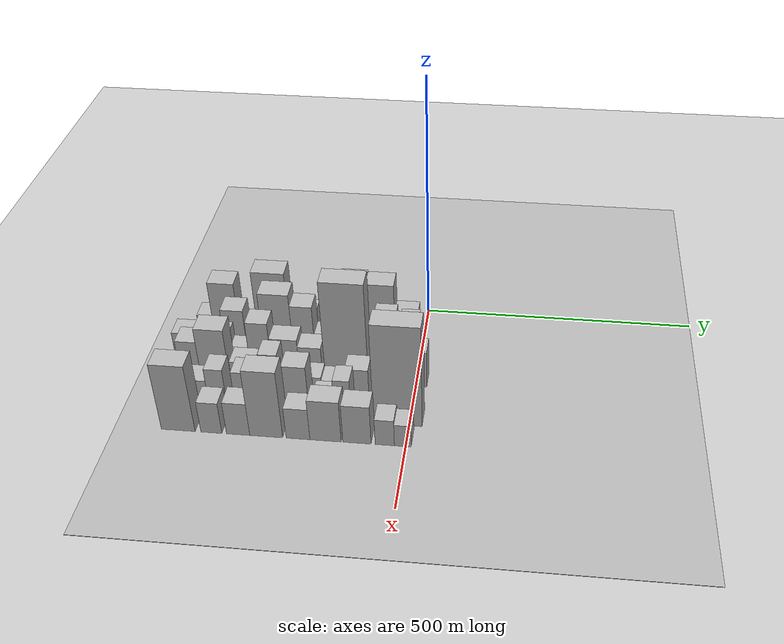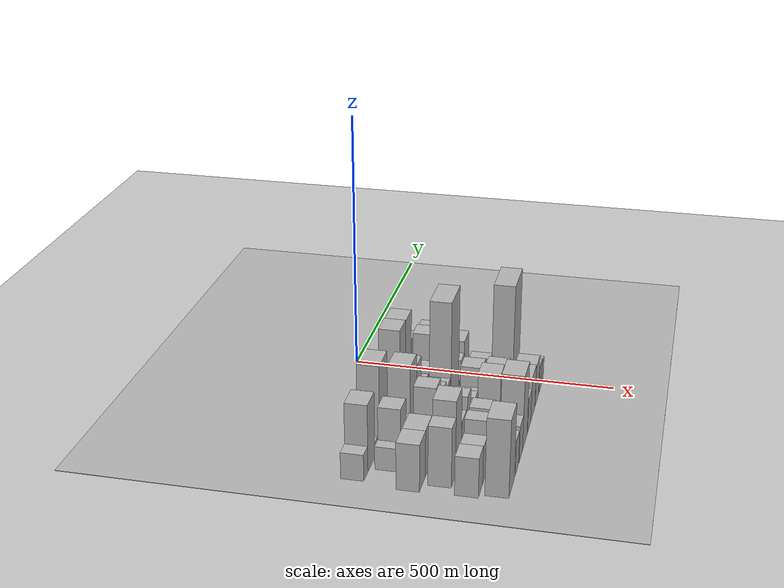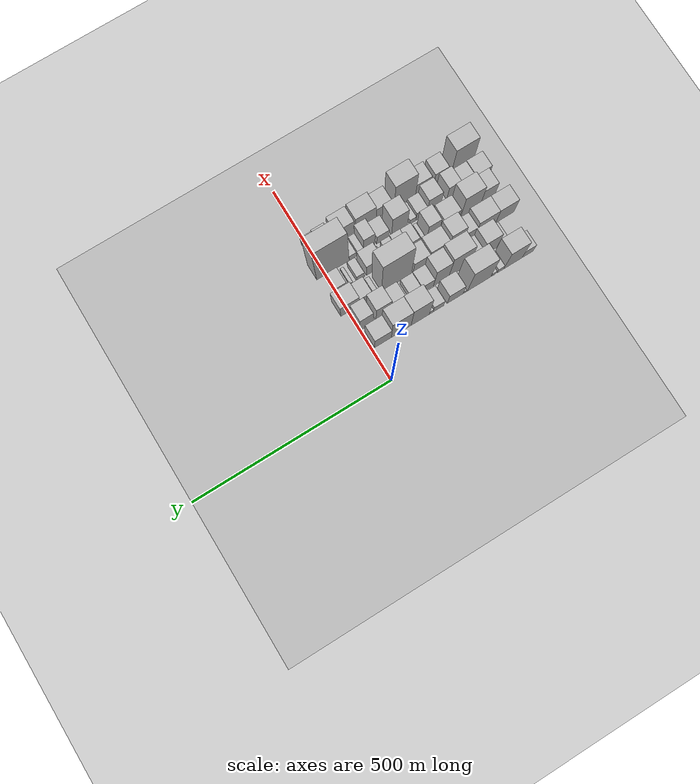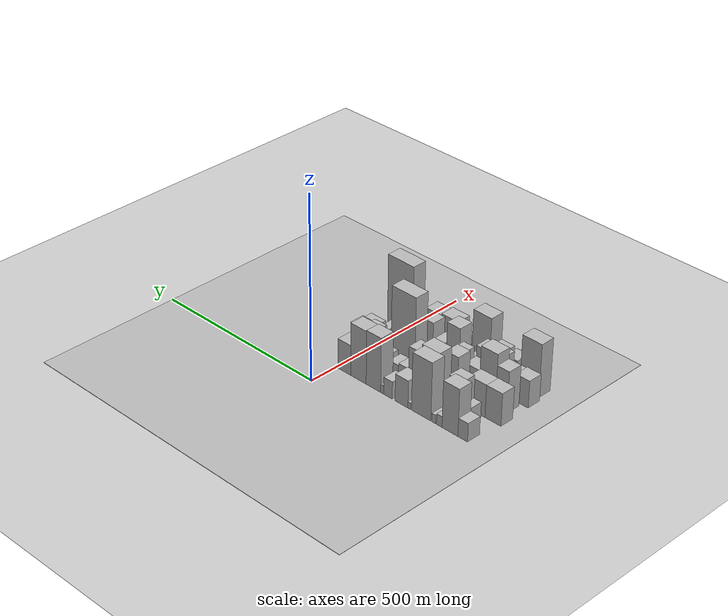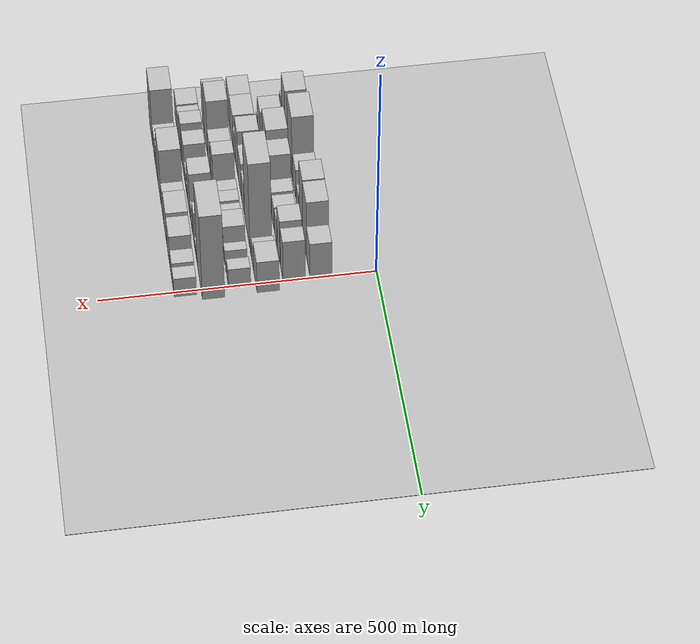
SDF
<sdf version="1.6">
 <world name="default">
  <include><name>ground_plane_1</name><uri>model://HANNAS_ground_plane</uri></include>
  <include>
   <name>ground_plane_2</name>
   <uri>model://HANNAS_ground_plane</uri>
   <pose>100 0 0  0 0 0</pose>
  </include>
  <model name="building_9">
   <static>1</static>
   <pose>100.0000 -405.2098 0 0.000000 0.000000 0.000000</pose>
   <link name="link">
    <pose>0 0 25.50 0 0 0</pose>
    <collision name="collision"><geometry><box><size>40.0000 29.3912 51.0000</size></box></geometry></collision>
    <visual name="visual">
     <cast_shadows>0</cast_shadows>
     <geometry><box><size>40.0000 29.3912 51.0000</size></box></geometry>
     <material>
      <script>
       <uri>model://HANNAS_wall/materials/scripts</uri>
       <uri>model://HANNAS_wall/materials/textures</uri>
       <name>vrc/HANNAS_wall</name>
      </script>
     </material>
    </visual>
   </link>
  </model>
  <model name="building_10">
   <static>1</static>
   <pose>100.0000 -366.1211 0 0.000000 0.000000 0.000000</pose>
   <link name="link">
    <pose>0 0 64.50 0 0 0</pose>
    <collision name="collision"><geometry><box><size>40.0000 48.7862 129.0000</size></box></geometry></collision>
    <visual name="visual">
     <cast_shadows>0</cast_shadows>
     <geometry><box><size>40.0000 48.7862 129.0000</size></box></geometry>
     <material>
      <script>
       <uri>model://HANNAS_wall/materials/scripts</uri>
       <uri>model://HANNAS_wall/materials/textures</uri>
       <name>vrc/HANNAS_wall</name>
      </script>
     </material>
    </visual>
   </link>
  </model>
  <model name="building_11">
   <static>1</static>
   <pose>100.0000 -333.1940 0 0.000000 0.000000 0.000000</pose>
   <link name="link">
    <pose>0 0 15.00 0 0 0</pose>
    <collision name="collision"><geometry><box><size>40.0000 17.0678 30.0000</size></box></geometry></collision>
    <visual name="visual">
     <cast_shadows>0</cast_shadows>
     <geometry><box><size>40.0000 17.0678 30.0000</size></box></geometry>
     <material>
      <script>
       <uri>model://HANNAS_wall/materials/scripts</uri>
       <uri>model://HANNAS_wall/materials/textures</uri>
       <name>vrc/HANNAS_wall</name>
      </script>
     </material>
    </visual>
   </link>
  </model>
  <model name="building_12">
   <static>1</static>
   <pose>100.0000 -315.8564 0 0.000000 0.000000 0.000000</pose>
   <link name="link">
    <pose>0 0 12.00 0 0 0</pose>
    <collision name="collision"><geometry><box><size>40.0000 11.6074 24.0000</size></box></geometry></collision>
    <visual name="visual">
     <cast_shadows>0</cast_shadows>
     <geometry><box><size>40.0000 11.6074 24.0000</size></box></geometry>
     <material>
      <script>
       <uri>model://HANNAS_wall/materials/scripts</uri>
       <uri>model://HANNAS_wall/materials/textures</uri>
       <name>vrc/HANNAS_wall</name>
      </script>
     </material>
    </visual>
   </link>
  </model>
  <model name="building_13">
   <static>1</static>
   <pose>100.0000 -276.7017 0 0.000000 0.000000 0.000000</pose>
   <link name="link">
    <pose>0 0 79.50 0 0 0</pose>
    <collision name="collision"><geometry><box><size>40.0000 60.7021 159.0000</size></box></geometry></collision>
    <visual name="visual">
     <cast_shadows>0</cast_shadows>
     <geometry><box><size>40.0000 60.7021 159.0000</size></box></geometry>
     <material>
      <script>
       <uri>model://HANNAS_wall/materials/scripts</uri>
       <uri>model://HANNAS_wall/materials/textures</uri>
       <name>vrc/HANNAS_wall</name>
      </script>
     </material>
    </visual>
   </link>
  </model>
  <model name="building_14">
   <static>1</static>
   <pose>100.0000 -239.2034 0 0.000000 0.000000 0.000000</pose>
   <link name="link">
    <pose>0 0 9.00 0 0 0</pose>
    <collision name="collision"><geometry><box><size>40.0000 8.2945 18.0000</size></box></geometry></collision>
    <visual name="visual">
     <cast_shadows>0</cast_shadows>
     <geometry><box><size>40.0000 8.2945 18.0000</size></box></geometry>
     <material>
      <script>
       <uri>model://HANNAS_wall/materials/scripts</uri>
       <uri>model://HANNAS_wall/materials/textures</uri>
       <name>vrc/HANNAS_wall</name>
      </script>
     </material>
    </visual>
   </link>
  </model>
  <model name="building_15">
   <static>1</static>
   <pose>100.0000 -214.5223 0 0.000000 0.000000 0.000000</pose>
   <link name="link">
    <pose>0 0 37.50 0 0 0</pose>
    <collision name="collision"><geometry><box><size>40.0000 41.0677 75.0000</size></box></geometry></collision>
    <visual name="visual">
     <cast_shadows>0</cast_shadows>
     <geometry><box><size>40.0000 41.0677 75.0000</size></box></geometry>
     <material>
      <script>
       <uri>model://HANNAS_wall/materials/scripts</uri>
       <uri>model://HANNAS_wall/materials/textures</uri>
       <name>vrc/HANNAS_wall</name>
      </script>
     </material>
    </visual>
   </link>
  </model>
  <model name="building_16">
   <static>1</static>
   <pose>100.0000 -171.2197 0 0.000000 0.000000 0.000000</pose>
   <link name="link">
    <pose>0 0 24.00 0 0 0</pose>
    <collision name="collision"><geometry><box><size>40.0000 27.5374 48.0000</size></box></geometry></collision>
    <visual name="visual">
     <cast_shadows>0</cast_shadows>
     <geometry><box><size>40.0000 27.5374 48.0000</size></box></geometry>
     <material>
      <script>
       <uri>model://HANNAS_wall/materials/scripts</uri>
       <uri>model://HANNAS_wall/materials/textures</uri>
       <name>vrc/HANNAS_wall</name>
      </script>
     </material>
    </visual>
   </link>
  </model>
  <model name="building_17">
   <static>1</static>
   <pose>100.0000 -152.4533 0 0.000000 0.000000 0.000000</pose>
   <link name="link">
    <pose>0 0 12.00 0 0 0</pose>
    <collision name="collision"><geometry><box><size>40.0000 9.9954 24.0000</size></box></geometry></collision>
    <visual name="visual">
     <cast_shadows>0</cast_shadows>
     <geometry><box><size>40.0000 9.9954 24.0000</size></box></geometry>
     <material>
      <script>
       <uri>model://HANNAS_wall/materials/scripts</uri>
       <uri>model://HANNAS_wall/materials/textures</uri>
       <name>vrc/HANNAS_wall</name>
      </script>
     </material>
    </visual>
   </link>
  </model>
  <model name="building_18">
   <static>1</static>
   <pose>100.0000 -123.7615 0 0.000000 0.000000 0.000000</pose>
   <link name="link">
    <pose>0 0 75.00 0 0 0</pose>
    <collision name="collision"><geometry><box><size>40.0000 47.3882 150.0000</size></box></geometry></collision>
    <visual name="visual">
     <cast_shadows>0</cast_shadows>
     <geometry><box><size>40.0000 47.3882 150.0000</size></box></geometry>
     <material>
      <script>
       <uri>model://HANNAS_wall/materials/scripts</uri>
       <uri>model://HANNAS_wall/materials/textures</uri>
       <name>vrc/HANNAS_wall</name>
      </script>
     </material>
    </visual>
   </link>
  </model>
  <model name="building_19">
   <static>1</static>
   <pose>100.0000 -74.5731 0 0.000000 0.000000 0.000000</pose>
   <link name="link">
    <pose>0 0 73.50 0 0 0</pose>
    <collision name="collision"><geometry><box><size>40.0000 50.9886 147.0000</size></box></geometry></collision>
    <visual name="visual">
     <cast_shadows>0</cast_shadows>
     <geometry><box><size>40.0000 50.9886 147.0000</size></box></geometry>
     <material>
      <script>
       <uri>model://HANNAS_wall/materials/scripts</uri>
       <uri>model://HANNAS_wall/materials/textures</uri>
       <name>vrc/HANNAS_wall</name>
      </script>
     </material>
    </visual>
   </link>
  </model>
  <model name="building_20">
   <static>1</static>
   <pose>100.0000 -27.8224 0 0.000000 0.000000 0.000000</pose>
   <link name="link">
    <pose>0 0 42.00 0 0 0</pose>
    <collision name="collision"><geometry><box><size>40.0000 42.5128 84.0000</size></box></geometry></collision>
    <visual name="visual">
     <cast_shadows>0</cast_shadows>
     <geometry><box><size>40.0000 42.5128 84.0000</size></box></geometry>
     <material>
      <script>
       <uri>model://HANNAS_wall/materials/scripts</uri>
       <uri>model://HANNAS_wall/materials/textures</uri>
       <name>vrc/HANNAS_wall</name>
      </script>
     </material>
    </visual>
   </link>
  </model>
  <model name="building_61">
   <static>1</static>
   <pose>149.0000 -367.4813 0 0.000000 0.000000 0.000000</pose>
   <link name="link">
    <pose>0 0 22.50 0 0 0</pose>
    <collision name="collision"><geometry><box><size>40.0000 22.8675 45.0000</size></box></geometry></collision>
    <visual name="visual">
     <cast_shadows>0</cast_shadows>
     <geometry><box><size>40.0000 22.8675 45.0000</size></box></geometry>
     <material>
      <script>
       <uri>model://HANNAS_wall/materials/scripts</uri>
       <uri>model://HANNAS_wall/materials/textures</uri>
       <name>vrc/HANNAS_wall</name>
      </script>
     </material>
    </visual>
   </link>
  </model>
  <model name="building_62">
   <static>1</static>
   <pose>149.0000 -335.5406 0 0.000000 0.000000 0.000000</pose>
   <link name="link">
    <pose>0 0 54.00 0 0 0</pose>
    <collision name="collision"><geometry><box><size>40.0000 41.0138 108.0000</size></box></geometry></collision>
    <visual name="visual">
     <cast_shadows>0</cast_shadows>
     <geometry><box><size>40.0000 41.0138 108.0000</size></box></geometry>
     <material>
      <script>
       <uri>model://HANNAS_wall/materials/scripts</uri>
       <uri>model://HANNAS_wall/materials/textures</uri>
       <name>vrc/HANNAS_wall</name>
      </script>
     </material>
    </visual>
   </link>
  </model>
  <model name="building_63">
   <static>1</static>
   <pose>149.0000 -299.6682 0 0.000000 0.000000 0.000000</pose>
   <link name="link">
    <pose>0 0 30.00 0 0 0</pose>
    <collision name="collision"><geometry><box><size>40.0000 30.7311 60.0000</size></box></geometry></collision>
    <visual name="visual">
     <cast_shadows>0</cast_shadows>
     <geometry><box><size>40.0000 30.7311 60.0000</size></box></geometry>
     <material>
      <script>
       <uri>model://HANNAS_wall/materials/scripts</uri>
       <uri>model://HANNAS_wall/materials/textures</uri>
       <name>vrc/HANNAS_wall</name>
      </script>
     </material>
    </visual>
   </link>
  </model>
  <model name="building_64">
   <static>1</static>
   <pose>149.0000 -256.7071 0 0.000000 0.000000 0.000000</pose>
   <link name="link">
    <pose>0 0 75.00 0 0 0</pose>
    <collision name="collision"><geometry><box><size>40.0000 55.1910 150.0000</size></box></geometry></collision>
    <visual name="visual">
     <cast_shadows>0</cast_shadows>
     <geometry><box><size>40.0000 55.1910 150.0000</size></box></geometry>
     <material>
      <script>
       <uri>model://HANNAS_wall/materials/scripts</uri>
       <uri>model://HANNAS_wall/materials/textures</uri>
       <name>vrc/HANNAS_wall</name>
      </script>
     </material>
    </visual>
   </link>
  </model>
  <model name="building_65">
   <static>1</static>
   <pose>149.0000 -209.0709 0 0.000000 0.000000 0.000000</pose>
   <link name="link">
    <pose>0 0 63.00 0 0 0</pose>
    <collision name="collision"><geometry><box><size>40.0000 40.0814 126.0000</size></box></geometry></collision>
    <visual name="visual">
     <cast_shadows>0</cast_shadows>
     <geometry><box><size>40.0000 40.0814 126.0000</size></box></geometry>
     <material>
      <script>
       <uri>model://HANNAS_wall/materials/scripts</uri>
       <uri>model://HANNAS_wall/materials/textures</uri>
       <name>vrc/HANNAS_wall</name>
      </script>
     </material>
    </visual>
   </link>
  </model>
  <model name="building_66">
   <static>1</static>
   <pose>149.0000 -172.8821 0 0.000000 0.000000 0.000000</pose>
   <link name="link">
    <pose>0 0 31.50 0 0 0</pose>
    <collision name="collision"><geometry><box><size>40.0000 32.2961 63.0000</size></box></geometry></collision>
    <visual name="visual">
     <cast_shadows>0</cast_shadows>
     <geometry><box><size>40.0000 32.2961 63.0000</size></box></geometry>
     <material>
      <script>
       <uri>model://HANNAS_wall/materials/scripts</uri>
       <uri>model://HANNAS_wall/materials/textures</uri>
       <name>vrc/HANNAS_wall</name>
      </script>
     </material>
    </visual>
   </link>
  </model>
  <model name="building_67">
   <static>1</static>
   <pose>149.0000 -141.3580 0 0.000000 0.000000 0.000000</pose>
   <link name="link">
    <pose>0 0 28.50 0 0 0</pose>
    <collision name="collision"><geometry><box><size>40.0000 30.7523 57.0000</size></box></geometry></collision>
    <visual name="visual">
     <cast_shadows>0</cast_shadows>
     <geometry><box><size>40.0000 30.7523 57.0000</size></box></geometry>
     <material>
      <script>
       <uri>model://HANNAS_wall/materials/scripts</uri>
       <uri>model://HANNAS_wall/materials/textures</uri>
       <name>vrc/HANNAS_wall</name>
      </script>
     </material>
    </visual>
   </link>
  </model>
  <model name="building_68">
   <static>1</static>
   <pose>149.0000 -121.2978 0 0.000000 0.000000 0.000000</pose>
   <link name="link">
    <pose>0 0 10.50 0 0 0</pose>
    <collision name="collision"><geometry><box><size>40.0000 9.3680 21.0000</size></box></geometry></collision>
    <visual name="visual">
     <cast_shadows>0</cast_shadows>
     <geometry><box><size>40.0000 9.3680 21.0000</size></box></geometry>
     <material>
      <script>
       <uri>model://HANNAS_wall/materials/scripts</uri>
       <uri>model://HANNAS_wall/materials/textures</uri>
       <name>vrc/HANNAS_wall</name>
      </script>
     </material>
    </visual>
   </link>
  </model>
  <model name="building_69">
   <static>1</static>
   <pose>149.0000 -100.3855 0 0.000000 0.000000 0.000000</pose>
   <link name="link">
    <pose>0 0 31.50 0 0 0</pose>
    <collision name="collision"><geometry><box><size>40.0000 32.4565 63.0000</size></box></geometry></collision>
    <visual name="visual">
     <cast_shadows>0</cast_shadows>
     <geometry><box><size>40.0000 32.4565 63.0000</size></box></geometry>
     <material>
      <script>
       <uri>model://HANNAS_wall/materials/scripts</uri>
       <uri>model://HANNAS_wall/materials/textures</uri>
       <name>vrc/HANNAS_wall</name>
      </script>
     </material>
    </visual>
   </link>
  </model>
  <model name="building_70">
   <static>1</static>
   <pose>149.0000 -59.6714 0 0.000000 0.000000 0.000000</pose>
   <link name="link">
    <pose>0 0 57.00 0 0 0</pose>
    <collision name="collision"><geometry><box><size>40.0000 38.9719 114.0000</size></box></geometry></collision>
    <visual name="visual">
     <cast_shadows>0</cast_shadows>
     <geometry><box><size>40.0000 38.9719 114.0000</size></box></geometry>
     <material>
      <script>
       <uri>model://HANNAS_wall/materials/scripts</uri>
       <uri>model://HANNAS_wall/materials/textures</uri>
       <name>vrc/HANNAS_wall</name>
      </script>
     </material>
    </visual>
   </link>
  </model>
  <model name="building_71">
   <static>1</static>
   <pose>149.0000 -16.4411 0 0.000000 0.000000 0.000000</pose>
   <link name="link">
    <pose>0 0 52.50 0 0 0</pose>
    <collision name="collision"><geometry><box><size>40.0000 33.4887 105.0000</size></box></geometry></collision>
    <visual name="visual">
     <cast_shadows>0</cast_shadows>
     <geometry><box><size>40.0000 33.4887 105.0000</size></box></geometry>
     <material>
      <script>
       <uri>model://HANNAS_wall/materials/scripts</uri>
       <uri>model://HANNAS_wall/materials/textures</uri>
       <name>vrc/HANNAS_wall</name>
      </script>
     </material>
    </visual>
   </link>
  </model>
  <model name="building_110">
   <static>1</static>
   <pose>198.0000 -408.3808 0 0.000000 0.000000 0.000000</pose>
   <link name="link">
    <pose>0 0 45.00 0 0 0</pose>
    <collision name="collision"><geometry><box><size>40.0000 48.2486 90.0000</size></box></geometry></collision>
    <visual name="visual">
     <cast_shadows>0</cast_shadows>
     <geometry><box><size>40.0000 48.2486 90.0000</size></box></geometry>
     <material>
      <script>
       <uri>model://HANNAS_wall/materials/scripts</uri>
       <uri>model://HANNAS_wall/materials/textures</uri>
       <name>vrc/HANNAS_wall</name>
      </script>
     </material>
    </visual>
   </link>
  </model>
  <model name="building_111">
   <static>1</static>
   <pose>198.0000 -357.9529 0 0.000000 0.000000 0.000000</pose>
   <link name="link">
    <pose>0 0 45.00 0 0 0</pose>
    <collision name="collision"><geometry><box><size>40.0000 52.6072 90.0000</size></box></geometry></collision>
    <visual name="visual">
     <cast_shadows>0</cast_shadows>
     <geometry><box><size>40.0000 52.6072 90.0000</size></box></geometry>
     <material>
      <script>
       <uri>model://HANNAS_wall/materials/scripts</uri>
       <uri>model://HANNAS_wall/materials/textures</uri>
       <name>vrc/HANNAS_wall</name>
      </script>
     </material>
    </visual>
   </link>
  </model>
  <model name="building_112">
   <static>1</static>
   <pose>198.0000 -314.5184 0 0.000000 0.000000 0.000000</pose>
   <link name="link">
    <pose>0 0 30.00 0 0 0</pose>
    <collision name="collision"><geometry><box><size>40.0000 34.2618 60.0000</size></box></geometry></collision>
    <visual name="visual">
     <cast_shadows>0</cast_shadows>
     <geometry><box><size>40.0000 34.2618 60.0000</size></box></geometry>
     <material>
      <script>
       <uri>model://HANNAS_wall/materials/scripts</uri>
       <uri>model://HANNAS_wall/materials/textures</uri>
       <name>vrc/HANNAS_wall</name>
      </script>
     </material>
    </visual>
   </link>
  </model>
  <model name="building_113">
   <static>1</static>
   <pose>198.0000 -277.8785 0 0.000000 0.000000 0.000000</pose>
   <link name="link">
    <pose>0 0 61.50 0 0 0</pose>
    <collision name="collision"><geometry><box><size>40.0000 39.0179 123.0000</size></box></geometry></collision>
    <visual name="visual">
     <cast_shadows>0</cast_shadows>
     <geometry><box><size>40.0000 39.0179 123.0000</size></box></geometry>
     <material>
      <script>
       <uri>model://HANNAS_wall/materials/scripts</uri>
       <uri>model://HANNAS_wall/materials/textures</uri>
       <name>vrc/HANNAS_wall</name>
      </script>
     </material>
    </visual>
   </link>
  </model>
  <model name="building_114">
   <static>1</static>
   <pose>198.0000 -233.4797 0 0.000000 0.000000 0.000000</pose>
   <link name="link">
    <pose>0 0 45.00 0 0 0</pose>
    <collision name="collision"><geometry><box><size>40.0000 49.7797 90.0000</size></box></geometry></collision>
    <visual name="visual">
     <cast_shadows>0</cast_shadows>
     <geometry><box><size>40.0000 49.7797 90.0000</size></box></geometry>
     <material>
      <script>
       <uri>model://HANNAS_wall/materials/scripts</uri>
       <uri>model://HANNAS_wall/materials/textures</uri>
       <name>vrc/HANNAS_wall</name>
      </script>
     </material>
    </visual>
   </link>
  </model>
  <model name="building_115">
   <static>1</static>
   <pose>198.0000 -187.9001 0 0.000000 0.000000 0.000000</pose>
   <link name="link">
    <pose>0 0 37.50 0 0 0</pose>
    <collision name="collision"><geometry><box><size>40.0000 41.3796 75.0000</size></box></geometry></collision>
    <visual name="visual">
     <cast_shadows>0</cast_shadows>
     <geometry><box><size>40.0000 41.3796 75.0000</size></box></geometry>
     <material>
      <script>
       <uri>model://HANNAS_wall/materials/scripts</uri>
       <uri>model://HANNAS_wall/materials/textures</uri>
       <name>vrc/HANNAS_wall</name>
      </script>
     </material>
    </visual>
   </link>
  </model>
  <model name="building_116">
   <static>1</static>
   <pose>198.0000 -123.5567 0 0.000000 0.000000 0.000000</pose>
   <link name="link">
    <pose>0 0 111.00 0 0 0</pose>
    <collision name="collision"><geometry><box><size>40.0000 77.3071 222.0000</size></box></geometry></collision>
    <visual name="visual">
     <cast_shadows>0</cast_shadows>
     <geometry><box><size>40.0000 77.3071 222.0000</size></box></geometry>
     <material>
      <script>
       <uri>model://HANNAS_wall/materials/scripts</uri>
       <uri>model://HANNAS_wall/materials/textures</uri>
       <name>vrc/HANNAS_wall</name>
      </script>
     </material>
    </visual>
   </link>
  </model>
  <model name="building_117">
   <static>1</static>
   <pose>198.0000 -71.2216 0 0.000000 0.000000 0.000000</pose>
   <link name="link">
    <pose>0 0 12.00 0 0 0</pose>
    <collision name="collision"><geometry><box><size>40.0000 11.3631 24.0000</size></box></geometry></collision>
    <visual name="visual">
     <cast_shadows>0</cast_shadows>
     <geometry><box><size>40.0000 11.3631 24.0000</size></box></geometry>
     <material>
      <script>
       <uri>model://HANNAS_wall/materials/scripts</uri>
       <uri>model://HANNAS_wall/materials/textures</uri>
       <name>vrc/HANNAS_wall</name>
      </script>
     </material>
    </visual>
   </link>
  </model>
  <model name="building_118">
   <static>1</static>
   <pose>198.0000 -44.4706 0 0.000000 0.000000 0.000000</pose>
   <link name="link">
    <pose>0 0 28.50 0 0 0</pose>
    <collision name="collision"><geometry><box><size>40.0000 32.1390 57.0000</size></box></geometry></collision>
    <visual name="visual">
     <cast_shadows>0</cast_shadows>
     <geometry><box><size>40.0000 32.1390 57.0000</size></box></geometry>
     <material>
      <script>
       <uri>model://HANNAS_wall/materials/scripts</uri>
       <uri>model://HANNAS_wall/materials/textures</uri>
       <name>vrc/HANNAS_wall</name>
      </script>
     </material>
    </visual>
   </link>
  </model>
  <model name="building_119">
   <static>1</static>
   <pose>198.0000 -4.2194 0 0.000000 0.000000 0.000000</pose>
   <link name="link">
    <pose>0 0 40.50 0 0 0</pose>
    <collision name="collision"><geometry><box><size>40.0000 48.3633 81.0000</size></box></geometry></collision>
    <visual name="visual">
     <cast_shadows>0</cast_shadows>
     <geometry><box><size>40.0000 48.3633 81.0000</size></box></geometry>
     <material>
      <script>
       <uri>model://HANNAS_wall/materials/scripts</uri>
       <uri>model://HANNAS_wall/materials/textures</uri>
       <name>vrc/HANNAS_wall</name>
      </script>
     </material>
    </visual>
   </link>
  </model>
  <model name="building_152">
   <static>1</static>
   <pose>247.0000 -390.2739 0 0.000000 0.000000 0.000000</pose>
   <link name="link">
    <pose>0 0 57.00 0 0 0</pose>
    <collision name="collision"><geometry><box><size>40.0000 36.3085 114.0000</size></box></geometry></collision>
    <visual name="visual">
     <cast_shadows>0</cast_shadows>
     <geometry><box><size>40.0000 36.3085 114.0000</size></box></geometry>
     <material>
      <script>
       <uri>model://HANNAS_wall/materials/scripts</uri>
       <uri>model://HANNAS_wall/materials/textures</uri>
       <name>vrc/HANNAS_wall</name>
      </script>
     </material>
    </visual>
   </link>
  </model>
  <model name="building_153">
   <static>1</static>
   <pose>247.0000 -346.5622 0 0.000000 0.000000 0.000000</pose>
   <link name="link">
    <pose>0 0 72.00 0 0 0</pose>
    <collision name="collision"><geometry><box><size>40.0000 51.1148 144.0000</size></box></geometry></collision>
    <visual name="visual">
     <cast_shadows>0</cast_shadows>
     <geometry><box><size>40.0000 51.1148 144.0000</size></box></geometry>
     <material>
      <script>
       <uri>model://HANNAS_wall/materials/scripts</uri>
       <uri>model://HANNAS_wall/materials/textures</uri>
       <name>vrc/HANNAS_wall</name>
      </script>
     </material>
    </visual>
   </link>
  </model>
  <model name="building_154">
   <static>1</static>
   <pose>247.0000 -296.0767 0 0.000000 0.000000 0.000000</pose>
   <link name="link">
    <pose>0 0 37.50 0 0 0</pose>
    <collision name="collision"><geometry><box><size>40.0000 43.8562 75.0000</size></box></geometry></collision>
    <visual name="visual">
     <cast_shadows>0</cast_shadows>
     <geometry><box><size>40.0000 43.8562 75.0000</size></box></geometry>
     <material>
      <script>
       <uri>model://HANNAS_wall/materials/scripts</uri>
       <uri>model://HANNAS_wall/materials/textures</uri>
       <name>vrc/HANNAS_wall</name>
      </script>
     </material>
    </visual>
   </link>
  </model>
  <model name="building_155">
   <static>1</static>
   <pose>247.0000 -270.1461 0 0.000000 0.000000 0.000000</pose>
   <link name="link">
    <pose>0 0 9.00 0 0 0</pose>
    <collision name="collision"><geometry><box><size>40.0000 8.0050 18.0000</size></box></geometry></collision>
    <visual name="visual">
     <cast_shadows>0</cast_shadows>
     <geometry><box><size>40.0000 8.0050 18.0000</size></box></geometry>
     <material>
      <script>
       <uri>model://HANNAS_wall/materials/scripts</uri>
       <uri>model://HANNAS_wall/materials/textures</uri>
       <name>vrc/HANNAS_wall</name>
      </script>
     </material>
    </visual>
   </link>
  </model>
  <model name="building_156">
   <static>1</static>
   <pose>247.0000 -249.7182 0 0.000000 0.000000 0.000000</pose>
   <link name="link">
    <pose>0 0 48.00 0 0 0</pose>
    <collision name="collision"><geometry><box><size>40.0000 32.8508 96.0000</size></box></geometry></collision>
    <visual name="visual">
     <cast_shadows>0</cast_shadows>
     <geometry><box><size>40.0000 32.8508 96.0000</size></box></geometry>
     <material>
      <script>
       <uri>model://HANNAS_wall/materials/scripts</uri>
       <uri>model://HANNAS_wall/materials/textures</uri>
       <name>vrc/HANNAS_wall</name>
      </script>
     </material>
    </visual>
   </link>
  </model>
  <model name="building_157">
   <static>1</static>
   <pose>247.0000 -225.6899 0 0.000000 0.000000 0.000000</pose>
   <link name="link">
    <pose>0 0 10.50 0 0 0</pose>
    <collision name="collision"><geometry><box><size>40.0000 9.2056 21.0000</size></box></geometry></collision>
    <visual name="visual">
     <cast_shadows>0</cast_shadows>
     <geometry><box><size>40.0000 9.2056 21.0000</size></box></geometry>
     <material>
      <script>
       <uri>model://HANNAS_wall/materials/scripts</uri>
       <uri>model://HANNAS_wall/materials/textures</uri>
       <name>vrc/HANNAS_wall</name>
      </script>
     </material>
    </visual>
   </link>
  </model>
  <model name="building_158">
   <static>1</static>
   <pose>247.0000 -217.6339 0 0.000000 0.000000 0.000000</pose>
   <link name="link">
    <pose>0 0 7.50 0 0 0</pose>
    <collision name="collision"><geometry><box><size>40.0000 6.9065 15.0000</size></box></geometry></collision>
    <visual name="visual">
     <cast_shadows>0</cast_shadows>
     <geometry><box><size>40.0000 6.9065 15.0000</size></box></geometry>
     <material>
      <script>
       <uri>model://HANNAS_wall/materials/scripts</uri>
       <uri>model://HANNAS_wall/materials/textures</uri>
       <name>vrc/HANNAS_wall</name>
      </script>
     </material>
    </visual>
   </link>
  </model>
  <model name="building_159">
   <static>1</static>
   <pose>247.0000 -200.1254 0 0.000000 0.000000 0.000000</pose>
   <link name="link">
    <pose>0 0 24.00 0 0 0</pose>
    <collision name="collision"><geometry><box><size>40.0000 28.1105 48.0000</size></box></geometry></collision>
    <visual name="visual">
     <cast_shadows>0</cast_shadows>
     <geometry><box><size>40.0000 28.1105 48.0000</size></box></geometry>
     <material>
      <script>
       <uri>model://HANNAS_wall/materials/scripts</uri>
       <uri>model://HANNAS_wall/materials/textures</uri>
       <name>vrc/HANNAS_wall</name>
      </script>
     </material>
    </visual>
   </link>
  </model>
  <model name="building_160">
   <static>1</static>
   <pose>247.0000 -172.5354 0 0.000000 0.000000 0.000000</pose>
   <link name="link">
    <pose>0 0 25.50 0 0 0</pose>
    <collision name="collision"><geometry><box><size>40.0000 27.0696 51.0000</size></box></geometry></collision>
    <visual name="visual">
     <cast_shadows>0</cast_shadows>
     <geometry><box><size>40.0000 27.0696 51.0000</size></box></geometry>
     <material>
      <script>
       <uri>model://HANNAS_wall/materials/scripts</uri>
       <uri>model://HANNAS_wall/materials/textures</uri>
       <name>vrc/HANNAS_wall</name>
      </script>
     </material>
    </visual>
   </link>
  </model>
  <model name="building_161">
   <static>1</static>
   <pose>247.0000 -147.4159 0 0.000000 0.000000 0.000000</pose>
   <link name="link">
    <pose>0 0 22.50 0 0 0</pose>
    <collision name="collision"><geometry><box><size>40.0000 23.1694 45.0000</size></box></geometry></collision>
    <visual name="visual">
     <cast_shadows>0</cast_shadows>
     <geometry><box><size>40.0000 23.1694 45.0000</size></box></geometry>
     <material>
      <script>
       <uri>model://HANNAS_wall/materials/scripts</uri>
       <uri>model://HANNAS_wall/materials/textures</uri>
       <name>vrc/HANNAS_wall</name>
      </script>
     </material>
    </visual>
   </link>
  </model>
  <model name="building_162">
   <static>1</static>
   <pose>247.0000 -121.9047 0 0.000000 0.000000 0.000000</pose>
   <link name="link">
    <pose>0 0 12.00 0 0 0</pose>
    <collision name="collision"><geometry><box><size>40.0000 9.8531 24.0000</size></box></geometry></collision>
    <visual name="visual">
     <cast_shadows>0</cast_shadows>
     <geometry><box><size>40.0000 9.8531 24.0000</size></box></geometry>
     <material>
      <script>
       <uri>model://HANNAS_wall/materials/scripts</uri>
       <uri>model://HANNAS_wall/materials/textures</uri>
       <name>vrc/HANNAS_wall</name>
      </script>
     </material>
    </visual>
   </link>
  </model>
  <model name="building_163">
   <static>1</static>
   <pose>247.0000 -96.4733 0 0.000000 0.000000 0.000000</pose>
   <link name="link">
    <pose>0 0 37.50 0 0 0</pose>
    <collision name="collision"><geometry><box><size>40.0000 41.0097 75.0000</size></box></geometry></collision>
    <visual name="visual">
     <cast_shadows>0</cast_shadows>
     <geometry><box><size>40.0000 41.0097 75.0000</size></box></geometry>
     <material>
      <script>
       <uri>model://HANNAS_wall/materials/scripts</uri>
       <uri>model://HANNAS_wall/materials/textures</uri>
       <name>vrc/HANNAS_wall</name>
      </script>
     </material>
    </visual>
   </link>
  </model>
  <model name="building_164">
   <static>1</static>
   <pose>247.0000 -60.9734 0 0.000000 0.000000 0.000000</pose>
   <link name="link">
    <pose>0 0 19.50 0 0 0</pose>
    <collision name="collision"><geometry><box><size>40.0000 19.9901 39.0000</size></box></geometry></collision>
    <visual name="visual">
     <cast_shadows>0</cast_shadows>
     <geometry><box><size>40.0000 19.9901 39.0000</size></box></geometry>
     <material>
      <script>
       <uri>model://HANNAS_wall/materials/scripts</uri>
       <uri>model://HANNAS_wall/materials/textures</uri>
       <name>vrc/HANNAS_wall</name>
      </script>
     </material>
    </visual>
   </link>
  </model>
  <model name="building_165">
   <static>1</static>
   <pose>247.0000 -36.8813 0 0.000000 0.000000 0.000000</pose>
   <link name="link">
    <pose>0 0 9.00 0 0 0</pose>
    <collision name="collision"><geometry><box><size>40.0000 8.1942 18.0000</size></box></geometry></collision>
    <visual name="visual">
     <cast_shadows>0</cast_shadows>
     <geometry><box><size>40.0000 8.1942 18.0000</size></box></geometry>
     <material>
      <script>
       <uri>model://HANNAS_wall/materials/scripts</uri>
       <uri>model://HANNAS_wall/materials/textures</uri>
       <name>vrc/HANNAS_wall</name>
      </script>
     </material>
    </visual>
   </link>
  </model>
  <model name="building_166">
   <static>1</static>
   <pose>247.0000 -11.8270 0 0.000000 0.000000 0.000000</pose>
   <link name="link">
    <pose>0 0 24.00 0 0 0</pose>
    <collision name="collision"><geometry><box><size>40.0000 25.9142 48.0000</size></box></geometry></collision>
    <visual name="visual">
     <cast_shadows>0</cast_shadows>
     <geometry><box><size>40.0000 25.9142 48.0000</size></box></geometry>
     <material>
      <script>
       <uri>model://HANNAS_wall/materials/scripts</uri>
       <uri>model://HANNAS_wall/materials/textures</uri>
       <name>vrc/HANNAS_wall</name>
      </script>
     </material>
    </visual>
   </link>
  </model>
  <model name="building_204">
   <static>1</static>
   <pose>296.0000 -407.6432 0 0.000000 0.000000 0.000000</pose>
   <link name="link">
    <pose>0 0 37.50 0 0 0</pose>
    <collision name="collision"><geometry><box><size>40.0000 41.9013 75.0000</size></box></geometry></collision>
    <visual name="visual">
     <cast_shadows>0</cast_shadows>
     <geometry><box><size>40.0000 41.9013 75.0000</size></box></geometry>
     <material>
      <script>
       <uri>model://HANNAS_wall/materials/scripts</uri>
       <uri>model://HANNAS_wall/materials/textures</uri>
       <name>vrc/HANNAS_wall</name>
      </script>
     </material>
    </visual>
   </link>
  </model>
  <model name="building_205">
   <static>1</static>
   <pose>296.0000 -366.7133 0 0.000000 0.000000 0.000000</pose>
   <link name="link">
    <pose>0 0 36.00 0 0 0</pose>
    <collision name="collision"><geometry><box><size>40.0000 39.9585 72.0000</size></box></geometry></collision>
    <visual name="visual">
     <cast_shadows>0</cast_shadows>
     <geometry><box><size>40.0000 39.9585 72.0000</size></box></geometry>
     <material>
      <script>
       <uri>model://HANNAS_wall/materials/scripts</uri>
       <uri>model://HANNAS_wall/materials/textures</uri>
       <name>vrc/HANNAS_wall</name>
      </script>
     </material>
    </visual>
   </link>
  </model>
  <model name="building_206">
   <static>1</static>
   <pose>296.0000 -330.8768 0 0.000000 0.000000 0.000000</pose>
   <link name="link">
    <pose>0 0 49.50 0 0 0</pose>
    <collision name="collision"><geometry><box><size>40.0000 31.7145 99.0000</size></box></geometry></collision>
    <visual name="visual">
     <cast_shadows>0</cast_shadows>
     <geometry><box><size>40.0000 31.7145 99.0000</size></box></geometry>
     <material>
      <script>
       <uri>model://HANNAS_wall/materials/scripts</uri>
       <uri>model://HANNAS_wall/materials/textures</uri>
       <name>vrc/HANNAS_wall</name>
      </script>
     </material>
    </visual>
   </link>
  </model>
  <model name="building_207">
   <static>1</static>
   <pose>296.0000 -310.4005 0 0.000000 0.000000 0.000000</pose>
   <link name="link">
    <pose>0 0 10.50 0 0 0</pose>
    <collision name="collision"><geometry><box><size>40.0000 9.2380 21.0000</size></box></geometry></collision>
    <visual name="visual">
     <cast_shadows>0</cast_shadows>
     <geometry><box><size>40.0000 9.2380 21.0000</size></box></geometry>
     <material>
      <script>
       <uri>model://HANNAS_wall/materials/scripts</uri>
       <uri>model://HANNAS_wall/materials/textures</uri>
       <name>vrc/HANNAS_wall</name>
      </script>
     </material>
    </visual>
   </link>
  </model>
  <model name="building_208">
   <static>1</static>
   <pose>296.0000 -282.8087 0 0.000000 0.000000 0.000000</pose>
   <link name="link">
    <pose>0 0 48.00 0 0 0</pose>
    <collision name="collision"><geometry><box><size>40.0000 35.9455 96.0000</size></box></geometry></collision>
    <visual name="visual">
     <cast_shadows>0</cast_shadows>
     <geometry><box><size>40.0000 35.9455 96.0000</size></box></geometry>
     <material>
      <script>
       <uri>model://HANNAS_wall/materials/scripts</uri>
       <uri>model://HANNAS_wall/materials/textures</uri>
       <name>vrc/HANNAS_wall</name>
      </script>
     </material>
    </visual>
   </link>
  </model>
  <model name="building_209">
   <static>1</static>
   <pose>296.0000 -250.4099 0 0.000000 0.000000 0.000000</pose>
   <link name="link">
    <pose>0 0 25.50 0 0 0</pose>
    <collision name="collision"><geometry><box><size>40.0000 28.8522 51.0000</size></box></geometry></collision>
    <visual name="visual">
     <cast_shadows>0</cast_shadows>
     <geometry><box><size>40.0000 28.8522 51.0000</size></box></geometry>
     <material>
      <script>
       <uri>model://HANNAS_wall/materials/scripts</uri>
       <uri>model://HANNAS_wall/materials/textures</uri>
       <name>vrc/HANNAS_wall</name>
      </script>
     </material>
    </visual>
   </link>
  </model>
  <model name="building_210">
   <static>1</static>
   <pose>296.0000 -227.7093 0 0.000000 0.000000 0.000000</pose>
   <link name="link">
    <pose>0 0 15.00 0 0 0</pose>
    <collision name="collision"><geometry><box><size>40.0000 16.5491 30.0000</size></box></geometry></collision>
    <visual name="visual">
     <cast_shadows>0</cast_shadows>
     <geometry><box><size>40.0000 16.5491 30.0000</size></box></geometry>
     <material>
      <script>
       <uri>model://HANNAS_wall/materials/scripts</uri>
       <uri>model://HANNAS_wall/materials/textures</uri>
       <name>vrc/HANNAS_wall</name>
      </script>
     </material>
    </visual>
   </link>
  </model>
  <model name="building_211">
   <static>1</static>
   <pose>296.0000 -192.6640 0 0.000000 0.000000 0.000000</pose>
   <link name="link">
    <pose>0 0 58.50 0 0 0</pose>
    <collision name="collision"><geometry><box><size>40.0000 41.5415 117.0000</size></box></geometry></collision>
    <visual name="visual">
     <cast_shadows>0</cast_shadows>
     <geometry><box><size>40.0000 41.5415 117.0000</size></box></geometry>
     <material>
      <script>
       <uri>model://HANNAS_wall/materials/scripts</uri>
       <uri>model://HANNAS_wall/materials/textures</uri>
       <name>vrc/HANNAS_wall</name>
      </script>
     </material>
    </visual>
   </link>
  </model>
  <model name="building_212">
   <static>1</static>
   <pose>296.0000 -148.9817 0 0.000000 0.000000 0.000000</pose>
   <link name="link">
    <pose>0 0 27.00 0 0 0</pose>
    <collision name="collision"><geometry><box><size>40.0000 31.8230 54.0000</size></box></geometry></collision>
    <visual name="visual">
     <cast_shadows>0</cast_shadows>
     <geometry><box><size>40.0000 31.8230 54.0000</size></box></geometry>
     <material>
      <script>
       <uri>model://HANNAS_wall/materials/scripts</uri>
       <uri>model://HANNAS_wall/materials/textures</uri>
       <name>vrc/HANNAS_wall</name>
      </script>
     </material>
    </visual>
   </link>
  </model>
  <model name="building_213">
   <static>1</static>
   <pose>296.0000 -113.7684 0 0.000000 0.000000 0.000000</pose>
   <link name="link">
    <pose>0 0 46.50 0 0 0</pose>
    <collision name="collision"><geometry><box><size>40.0000 28.6035 93.0000</size></box></geometry></collision>
    <visual name="visual">
     <cast_shadows>0</cast_shadows>
     <geometry><box><size>40.0000 28.6035 93.0000</size></box></geometry>
     <material>
      <script>
       <uri>model://HANNAS_wall/materials/scripts</uri>
       <uri>model://HANNAS_wall/materials/textures</uri>
       <name>vrc/HANNAS_wall</name>
      </script>
     </material>
    </visual>
   </link>
  </model>
  <model name="building_214">
   <static>1</static>
   <pose>296.0000 -91.2875 0 0.000000 0.000000 0.000000</pose>
   <link name="link">
    <pose>0 0 15.00 0 0 0</pose>
    <collision name="collision"><geometry><box><size>40.0000 16.3583 30.0000</size></box></geometry></collision>
    <visual name="visual">
     <cast_shadows>0</cast_shadows>
     <geometry><box><size>40.0000 16.3583 30.0000</size></box></geometry>
     <material>
      <script>
       <uri>model://HANNAS_wall/materials/scripts</uri>
       <uri>model://HANNAS_wall/materials/textures</uri>
       <name>vrc/HANNAS_wall</name>
      </script>
     </material>
    </visual>
   </link>
  </model>
  <model name="building_215">
   <static>1</static>
   <pose>296.0000 -70.7729 0 0.000000 0.000000 0.000000</pose>
   <link name="link">
    <pose>0 0 16.50 0 0 0</pose>
    <collision name="collision"><geometry><box><size>40.0000 18.6709 33.0000</size></box></geometry></collision>
    <visual name="visual">
     <cast_shadows>0</cast_shadows>
     <geometry><box><size>40.0000 18.6709 33.0000</size></box></geometry>
     <material>
      <script>
       <uri>model://HANNAS_wall/materials/scripts</uri>
       <uri>model://HANNAS_wall/materials/textures</uri>
       <name>vrc/HANNAS_wall</name>
      </script>
     </material>
    </visual>
   </link>
  </model>
  <model name="building_216">
   <static>1</static>
   <pose>296.0000 -19.5325 0 0.000000 0.000000 0.000000</pose>
   <link name="link">
    <pose>0 0 109.50 0 0 0</pose>
    <collision name="collision"><geometry><box><size>40.0000 83.8100 219.0000</size></box></geometry></collision>
    <visual name="visual">
     <cast_shadows>0</cast_shadows>
     <geometry><box><size>40.0000 83.8100 219.0000</size></box></geometry>
     <material>
      <script>
       <uri>model://HANNAS_wall/materials/scripts</uri>
       <uri>model://HANNAS_wall/materials/textures</uri>
       <name>vrc/HANNAS_wall</name>
      </script>
     </material>
    </visual>
   </link>
  </model>
  <model name="building_251">
   <static>1</static>
   <pose>345.0000 -389.3243 0 0.000000 0.000000 0.000000</pose>
   <link name="link">
    <pose>0 0 73.50 0 0 0</pose>
    <collision name="collision"><geometry><box><size>40.0000 58.7222 147.0000</size></box></geometry></collision>
    <visual name="visual">
     <cast_shadows>0</cast_shadows>
     <geometry><box><size>40.0000 58.7222 147.0000</size></box></geometry>
     <material>
      <script>
       <uri>model://HANNAS_wall/materials/scripts</uri>
       <uri>model://HANNAS_wall/materials/textures</uri>
       <name>vrc/HANNAS_wall</name>
      </script>
     </material>
    </visual>
   </link>
  </model>
  <model name="building_252">
   <static>1</static>
   <pose>345.0000 -331.8122 0 0.000000 0.000000 0.000000</pose>
   <link name="link">
    <pose>0 0 34.50 0 0 0</pose>
    <collision name="collision"><geometry><box><size>40.0000 36.3020 69.0000</size></box></geometry></collision>
    <visual name="visual">
     <cast_shadows>0</cast_shadows>
     <geometry><box><size>40.0000 36.3020 69.0000</size></box></geometry>
     <material>
      <script>
       <uri>model://HANNAS_wall/materials/scripts</uri>
       <uri>model://HANNAS_wall/materials/textures</uri>
       <name>vrc/HANNAS_wall</name>
      </script>
     </material>
    </visual>
   </link>
  </model>
  <model name="building_253">
   <static>1</static>
   <pose>345.0000 -285.5594 0 0.000000 0.000000 0.000000</pose>
   <link name="link">
    <pose>0 0 36.00 0 0 0</pose>
    <collision name="collision"><geometry><box><size>40.0000 40.2037 72.0000</size></box></geometry></collision>
    <visual name="visual">
     <cast_shadows>0</cast_shadows>
     <geometry><box><size>40.0000 40.2037 72.0000</size></box></geometry>
     <material>
      <script>
       <uri>model://HANNAS_wall/materials/scripts</uri>
       <uri>model://HANNAS_wall/materials/textures</uri>
       <name>vrc/HANNAS_wall</name>
      </script>
     </material>
    </visual>
   </link>
  </model>
  <model name="building_254">
   <static>1</static>
   <pose>345.0000 -237.1508 0 0.000000 0.000000 0.000000</pose>
   <link name="link">
    <pose>0 0 73.50 0 0 0</pose>
    <collision name="collision"><geometry><box><size>40.0000 56.6134 147.0000</size></box></geometry></collision>
    <visual name="visual">
     <cast_shadows>0</cast_shadows>
     <geometry><box><size>40.0000 56.6134 147.0000</size></box></geometry>
     <material>
      <script>
       <uri>model://HANNAS_wall/materials/scripts</uri>
       <uri>model://HANNAS_wall/materials/textures</uri>
       <name>vrc/HANNAS_wall</name>
      </script>
     </material>
    </visual>
   </link>
  </model>
  <model name="building_255">
   <static>1</static>
   <pose>345.0000 -182.5965 0 0.000000 0.000000 0.000000</pose>
   <link name="link">
    <pose>0 0 34.50 0 0 0</pose>
    <collision name="collision"><geometry><box><size>40.0000 40.4953 69.0000</size></box></geometry></collision>
    <visual name="visual">
     <cast_shadows>0</cast_shadows>
     <geometry><box><size>40.0000 40.4953 69.0000</size></box></geometry>
     <material>
      <script>
       <uri>model://HANNAS_wall/materials/scripts</uri>
       <uri>model://HANNAS_wall/materials/textures</uri>
       <name>vrc/HANNAS_wall</name>
      </script>
     </material>
    </visual>
   </link>
  </model>
  <model name="building_256">
   <static>1</static>
   <pose>345.0000 -135.7028 0 0.000000 0.000000 0.000000</pose>
   <link name="link">
    <pose>0 0 45.00 0 0 0</pose>
    <collision name="collision"><geometry><box><size>40.0000 53.2920 90.0000</size></box></geometry></collision>
    <visual name="visual">
     <cast_shadows>0</cast_shadows>
     <geometry><box><size>40.0000 53.2920 90.0000</size></box></geometry>
     <material>
      <script>
       <uri>model://HANNAS_wall/materials/scripts</uri>
       <uri>model://HANNAS_wall/materials/textures</uri>
       <name>vrc/HANNAS_wall</name>
      </script>
     </material>
    </visual>
   </link>
  </model>
  <model name="building_257">
   <static>1</static>
   <pose>345.0000 -82.2045 0 0.000000 0.000000 0.000000</pose>
   <link name="link">
    <pose>0 0 42.00 0 0 0</pose>
    <collision name="collision"><geometry><box><size>40.0000 47.7046 84.0000</size></box></geometry></collision>
    <visual name="visual">
     <cast_shadows>0</cast_shadows>
     <geometry><box><size>40.0000 47.7046 84.0000</size></box></geometry>
     <material>
      <script>
       <uri>model://HANNAS_wall/materials/scripts</uri>
       <uri>model://HANNAS_wall/materials/textures</uri>
       <name>vrc/HANNAS_wall</name>
      </script>
     </material>
    </visual>
   </link>
  </model>
  <model name="building_258">
   <static>1</static>
   <pose>345.0000 -35.1125 0 0.000000 0.000000 0.000000</pose>
   <link name="link">
    <pose>0 0 28.50 0 0 0</pose>
    <collision name="collision"><geometry><box><size>40.0000 32.4795 57.0000</size></box></geometry></collision>
    <visual name="visual">
     <cast_shadows>0</cast_shadows>
     <geometry><box><size>40.0000 32.4795 57.0000</size></box></geometry>
     <material>
      <script>
       <uri>model://HANNAS_wall/materials/scripts</uri>
       <uri>model://HANNAS_wall/materials/textures</uri>
       <name>vrc/HANNAS_wall</name>
      </script>
     </material>
    </visual>
   </link>
  </model>
  <model name="building_259">
   <static>1</static>
   <pose>345.0000 -4.7013 0 0.000000 0.000000 0.000000</pose>
   <link name="link">
    <pose>0 0 24.00 0 0 0</pose>
    <collision name="collision"><geometry><box><size>40.0000 28.3428 48.0000</size></box></geometry></collision>
    <visual name="visual">
     <cast_shadows>0</cast_shadows>
     <geometry><box><size>40.0000 28.3428 48.0000</size></box></geometry>
     <material>
      <script>
       <uri>model://HANNAS_wall/materials/scripts</uri>
       <uri>model://HANNAS_wall/materials/textures</uri>
       <name>vrc/HANNAS_wall</name>
      </script>
     </material>
    </visual>
   </link>
  </model>
 </world>
</sdf>
